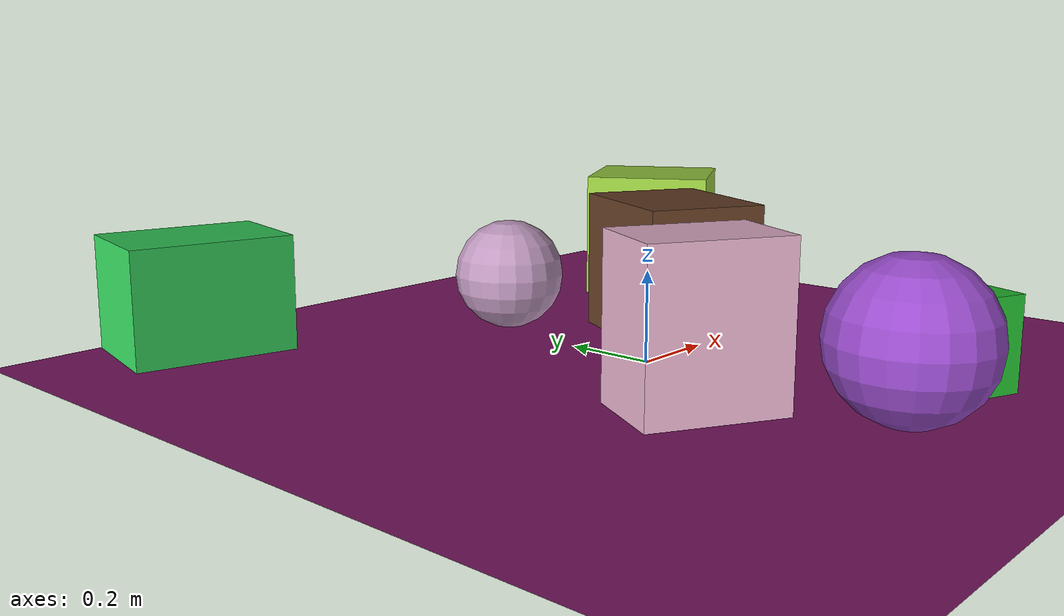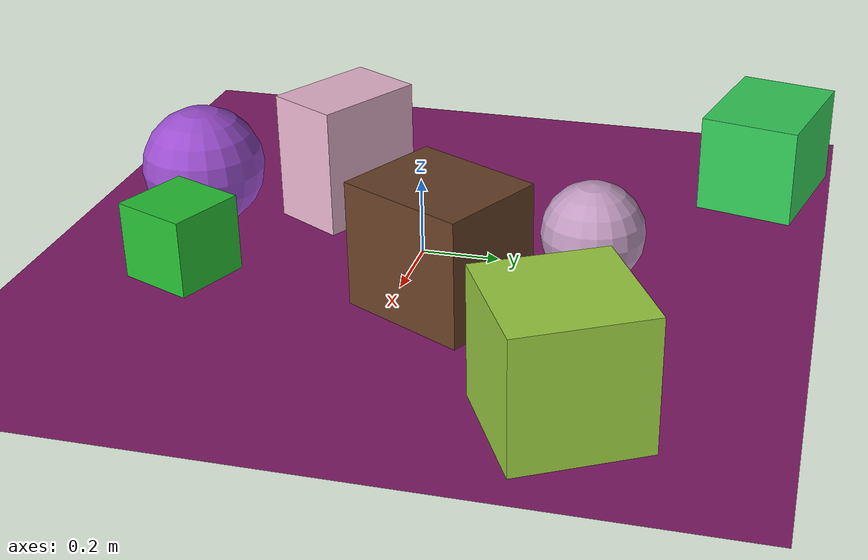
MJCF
<mujoco>
   <asset>
<texture type="skybox" builtin="gradient" rgb1="0.0 0.6 0.6" rgb2="0.2 0.6 0.8" width="500" height="500"/>
<texture name="checker_0" builtin="checker" rgb1="0.4 0.9 0.3" rgb2="0.8 0.7 0.2" width="500" height="500"/>
<texture name="checker_1" builtin="checker" rgb1="0.3 0.5 1.0" rgb2="0.9 0.1 0.6" width="500" height="500"/>
<texture name="checker_2" builtin="checker" rgb1="0.9 1.0 0.9" rgb2="0.6 0.2 0.6" width="500" height="500"/>
<texture name="checker_3" builtin="checker" rgb1="0.9 0.9 0.9" rgb2="0.9 0.5 0.7" width="500" height="500"/>
<texture name="gradient_4" builtin="gradient" rgb1="0.6 0.3 0.0" rgb2="0.2 0.2 0.3" width="500" height="500"/>
<texture name="checker_5" builtin="checker" rgb1="0.2 0.8 0.4" rgb2="0.2 0.8 0.3" width="500" height="500"/>
<texture name="gradient_6" builtin="gradient" rgb1="0.1 0.7 0.3" rgb2="0.2 0.8 0.1" width="500" height="500"/><material name="checker_0_mat" reflectance="0.4286616981796274" texrepeat="5 5" texture="checker_0" texuniform="false" />
<material name="checker_1_mat" reflectance="0.3437318640279733" texrepeat="3 3" texture="checker_1" texuniform="false" />
<material name="checker_2_mat" reflectance="0.6317802315739197" texrepeat="8 8" texture="checker_2" texuniform="false" />
<material name="checker_3_mat" reflectance="0.6132822927267586" texrepeat="2 2" texture="checker_3" texuniform="false" />
<material name="gradient_4_mat" reflectance="0.9911802545254189" texture="gradient_4" texuniform="true"/>
<material name="checker_5_mat" reflectance="0.5791424268103667" texrepeat="2 2" texture="checker_5" texuniform="false" />
<material name="gradient_6_mat" reflectance="0.5463484255754735" texture="gradient_6" texuniform="true"/>
   </asset>

   <worldbody>
     <geom type="plane" size="1 1 0.1" rgba="0.5 0.1 0.4 1" />
<light pos="-0.24502568495694144 -0.7375855480776314 2" dir="0 0 -1" cutoff="90" diffuse="1 1 1" specular="1 1 1"/>
<light pos="-0.11027949540401605 -0.41872565970620923 2" dir="0 0 -1" cutoff="90" diffuse="1 1 1" specular="1 1 1"/>
<geom type="box" pos="0.7 0.5 0.16" size="0.16 0.16 0.16" material="checker_0_mat" euler="0 0 29" />
<geom type="sphere" pos="-0.04 -0.61 0.16" size="0.16 0.16 0.16" material="checker_1_mat" euler="0 0 28" />
<geom type="sphere" pos="0.05 0.45 0.13" size="0.13 0.13 0.13" material="checker_2_mat" euler="0 0 86" />
<geom type="box" pos="-0.21 -0.27 0.17" size="0.1 0.15 0.17" material="checker_3_mat" euler="0 0 61" />
<geom type="box" pos="0.26 0.12 0.16" size="0.17 0.14 0.16" material="gradient_4_mat" euler="0 0 63" />
<geom type="box" pos="-0.58 0.82 0.13" size="0.13 0.18 0.13" material="checker_5_mat" euler="0 0 77" />
<geom type="box" pos="0.25 -0.55 0.1" size="0.1 0.1 0.1" material="gradient_6_mat" euler="0 0 68" /><camera euler="60 0 180" fovy="60" name="camera1" pos="-0.2 -1.5 1"></camera>   </worldbody>
   <visual>
      <headlight diffuse="0.7 0.7 0.7"/>
   </visual>
</mujoco>
